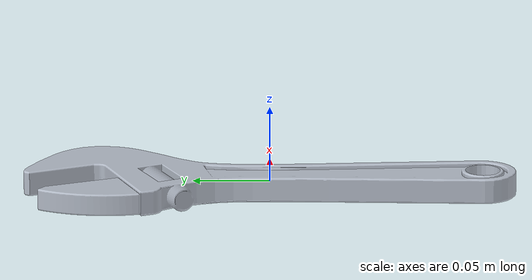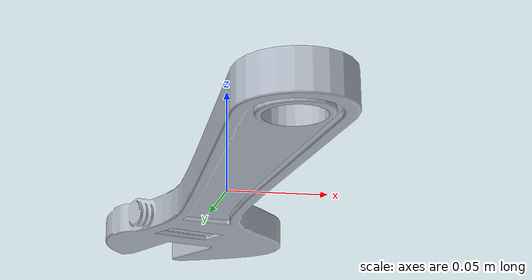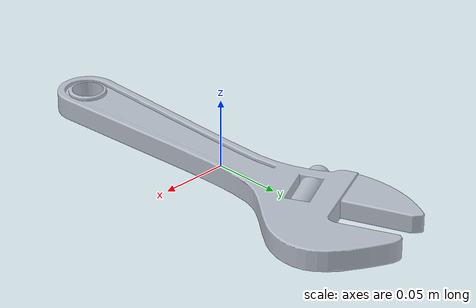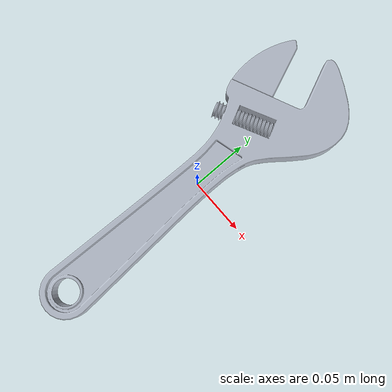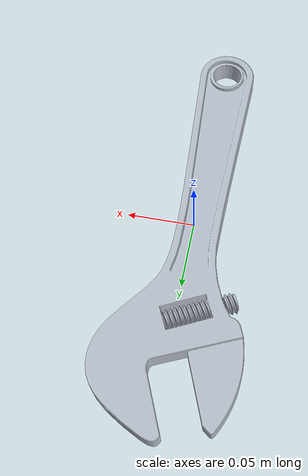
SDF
<?xml version="1.0"?>
<sdf version="1.6">
  <model name="fixture_box_plain">
    <link name="link">
      <inertial><mass>1.28</mass><inertia><ixx>0.01216</ixx><ixy>0</ixy><ixz>0</ixz><iyy>0.00256</iyy><iyz>0</iyz><izz>0.01408</izz></inertia></inertial>
      <collision name="collision"><pose>0 0 0.092 0 0 0</pose><geometry><mesh><uri>model://fixture_box_plain/meshes/adjustable_wrench.dae</uri><scale>2 2 2</scale></mesh></geometry><surface><friction><ode><mu>1.0</mu><mu2>1.0</mu2></ode></friction><contact><ode><kp>1e6</kp><kd>1.0</kd><min_depth>0.001</min_depth><max_vel>0.01</max_vel></ode></contact></surface></collision>
      <visual name="imported_tool_mesh"><pose>0 0 0.092 0 0 0</pose><geometry><mesh><uri>model://fixture_box_plain/meshes/adjustable_wrench.dae</uri><scale>2 2 2</scale></mesh></geometry></visual>
    </link>
  </model>
</sdf>
